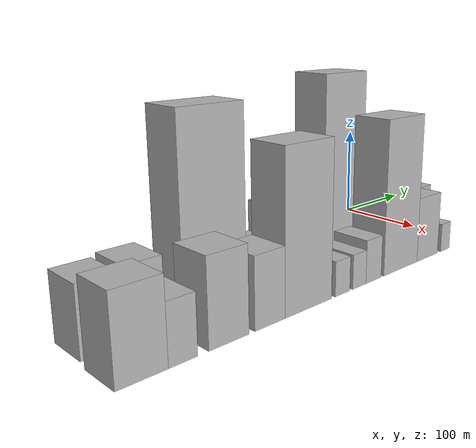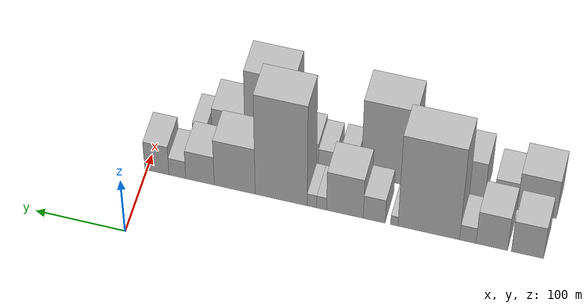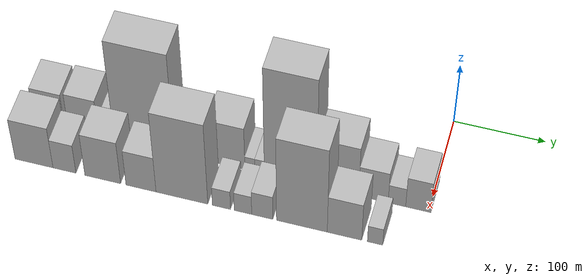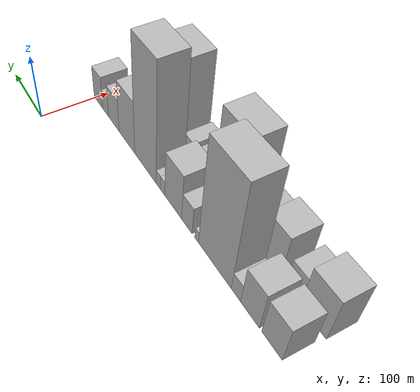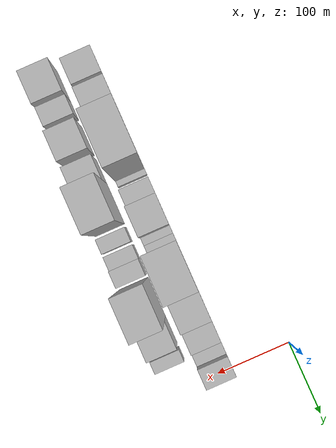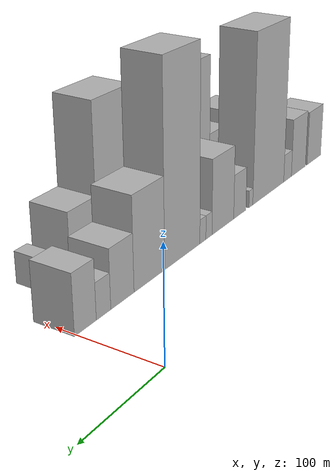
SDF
<sdf version="1.6">
 <world name="default">
  <model name="building_1">
   <static>1</static>
   <pose>100.0000 -418.6548 0 0.000000 0.000000 0.000000</pose>
   <link name="link">
    <pose>0 0 30.00 0 0 0</pose>
    <collision name="collision"><geometry><box><size>40.0000 34.6905 60.0000</size></box></geometry></collision>
    <visual name="visual">
     <cast_shadows>0</cast_shadows>
     <geometry><box><size>40.0000 34.6905 60.0000</size></box></geometry>
     <material>
      <script>
       <uri>model://HANNAS_wall/materials/scripts</uri>
       <uri>model://HANNAS_wall/materials/textures</uri>
       <name>vrc/HANNAS_wall</name>
      </script>
     </material>
    </visual>
   </link>
  </model>
  <model name="building_2">
   <static>1</static>
   <pose>100.0000 -380.2245 0 0.000000 0.000000 0.000000</pose>
   <link name="link">
    <pose>0 0 31.50 0 0 0</pose>
    <collision name="collision"><geometry><box><size>40.0000 34.1700 63.0000</size></box></geometry></collision>
    <visual name="visual">
     <cast_shadows>0</cast_shadows>
     <geometry><box><size>40.0000 34.1700 63.0000</size></box></geometry>
     <material>
      <script>
       <uri>model://HANNAS_wall/materials/scripts</uri>
       <uri>model://HANNAS_wall/materials/textures</uri>
       <name>vrc/HANNAS_wall</name>
      </script>
     </material>
    </visual>
   </link>
  </model>
  <model name="building_3">
   <static>1</static>
   <pose>100.0000 -354.2400 0 0.000000 0.000000 0.000000</pose>
   <link name="link">
    <pose>0 0 15.00 0 0 0</pose>
    <collision name="collision"><geometry><box><size>40.0000 17.7990 30.0000</size></box></geometry></collision>
    <visual name="visual">
     <cast_shadows>0</cast_shadows>
     <geometry><box><size>40.0000 17.7990 30.0000</size></box></geometry>
     <material>
      <script>
       <uri>model://HANNAS_wall/materials/scripts</uri>
       <uri>model://HANNAS_wall/materials/textures</uri>
       <name>vrc/HANNAS_wall</name>
      </script>
     </material>
    </visual>
   </link>
  </model>
  <model name="building_4">
   <static>1</static>
   <pose>100.0000 -311.7143 0 0.000000 0.000000 0.000000</pose>
   <link name="link">
    <pose>0 0 87.00 0 0 0</pose>
    <collision name="collision"><geometry><box><size>40.0000 67.2525 174.0000</size></box></geometry></collision>
    <visual name="visual">
     <cast_shadows>0</cast_shadows>
     <geometry><box><size>40.0000 67.2525 174.0000</size></box></geometry>
     <material>
      <script>
       <uri>model://HANNAS_wall/materials/scripts</uri>
       <uri>model://HANNAS_wall/materials/textures</uri>
       <name>vrc/HANNAS_wall</name>
      </script>
     </material>
    </visual>
   </link>
  </model>
  <model name="building_5">
   <static>1</static>
   <pose>100.0000 -274.0974 0 0.000000 0.000000 0.000000</pose>
   <link name="link">
    <pose>0 0 9.00 0 0 0</pose>
    <collision name="collision"><geometry><box><size>40.0000 7.9812 18.0000</size></box></geometry></collision>
    <visual name="visual">
     <cast_shadows>0</cast_shadows>
     <geometry><box><size>40.0000 7.9812 18.0000</size></box></geometry>
     <material>
      <script>
       <uri>model://HANNAS_wall/materials/scripts</uri>
       <uri>model://HANNAS_wall/materials/textures</uri>
       <name>vrc/HANNAS_wall</name>
      </script>
     </material>
    </visual>
   </link>
  </model>
  <model name="building_6">
   <static>1</static>
   <pose>100.0000 -252.1353 0 0.000000 0.000000 0.000000</pose>
   <link name="link">
    <pose>0 0 22.50 0 0 0</pose>
    <collision name="collision"><geometry><box><size>40.0000 23.9430 45.0000</size></box></geometry></collision>
    <visual name="visual">
     <cast_shadows>0</cast_shadows>
     <geometry><box><size>40.0000 23.9430 45.0000</size></box></geometry>
     <material>
      <script>
       <uri>model://HANNAS_wall/materials/scripts</uri>
       <uri>model://HANNAS_wall/materials/textures</uri>
       <name>vrc/HANNAS_wall</name>
      </script>
     </material>
    </visual>
   </link>
  </model>
  <model name="building_7">
   <static>1</static>
   <pose>100.0000 -219.9529 0 0.000000 0.000000 0.000000</pose>
   <link name="link">
    <pose>0 0 37.50 0 0 0</pose>
    <collision name="collision"><geometry><box><size>40.0000 40.4219 75.0000</size></box></geometry></collision>
    <visual name="visual">
     <cast_shadows>0</cast_shadows>
     <geometry><box><size>40.0000 40.4219 75.0000</size></box></geometry>
     <material>
      <script>
       <uri>model://HANNAS_wall/materials/scripts</uri>
       <uri>model://HANNAS_wall/materials/textures</uri>
       <name>vrc/HANNAS_wall</name>
      </script>
     </material>
    </visual>
   </link>
  </model>
  <model name="building_8">
   <static>1</static>
   <pose>100.0000 -194.3136 0 0.000000 0.000000 0.000000</pose>
   <link name="link">
    <pose>0 0 12.00 0 0 0</pose>
    <collision name="collision"><geometry><box><size>40.0000 10.8566 24.0000</size></box></geometry></collision>
    <visual name="visual">
     <cast_shadows>0</cast_shadows>
     <geometry><box><size>40.0000 10.8566 24.0000</size></box></geometry>
     <material>
      <script>
       <uri>model://HANNAS_wall/materials/scripts</uri>
       <uri>model://HANNAS_wall/materials/textures</uri>
       <name>vrc/HANNAS_wall</name>
      </script>
     </material>
    </visual>
   </link>
  </model>
  <model name="building_9">
   <static>1</static>
   <pose>100.0000 -183.6284 0 0.000000 0.000000 0.000000</pose>
   <link name="link">
    <pose>0 0 12.00 0 0 0</pose>
    <collision name="collision"><geometry><box><size>40.0000 10.5139 24.0000</size></box></geometry></collision>
    <visual name="visual">
     <cast_shadows>0</cast_shadows>
     <geometry><box><size>40.0000 10.5139 24.0000</size></box></geometry>
     <material>
      <script>
       <uri>model://HANNAS_wall/materials/scripts</uri>
       <uri>model://HANNAS_wall/materials/textures</uri>
       <name>vrc/HANNAS_wall</name>
      </script>
     </material>
    </visual>
   </link>
  </model>
  <model name="building_10">
   <static>1</static>
   <pose>100.0000 -149.5996 0 0.000000 0.000000 0.000000</pose>
   <link name="link">
    <pose>0 0 94.50 0 0 0</pose>
    <collision name="collision"><geometry><box><size>40.0000 57.5438 189.0000</size></box></geometry></collision>
    <visual name="visual">
     <cast_shadows>0</cast_shadows>
     <geometry><box><size>40.0000 57.5438 189.0000</size></box></geometry>
     <material>
      <script>
       <uri>model://HANNAS_wall/materials/scripts</uri>
       <uri>model://HANNAS_wall/materials/textures</uri>
       <name>vrc/HANNAS_wall</name>
      </script>
     </material>
    </visual>
   </link>
  </model>
  <model name="building_11">
   <static>1</static>
   <pose>100.0000 -98.1262 0 0.000000 0.000000 0.000000</pose>
   <link name="link">
    <pose>0 0 43.50 0 0 0</pose>
    <collision name="collision"><geometry><box><size>40.0000 45.4030 87.0000</size></box></geometry></collision>
    <visual name="visual">
     <cast_shadows>0</cast_shadows>
     <geometry><box><size>40.0000 45.4030 87.0000</size></box></geometry>
     <material>
      <script>
       <uri>model://HANNAS_wall/materials/scripts</uri>
       <uri>model://HANNAS_wall/materials/textures</uri>
       <name>vrc/HANNAS_wall</name>
      </script>
     </material>
    </visual>
   </link>
  </model>
  <model name="building_12">
   <static>1</static>
   <pose>100.0000 -59.4996 0 0.000000 0.000000 0.000000</pose>
   <link name="link">
    <pose>0 0 27.00 0 0 0</pose>
    <collision name="collision"><geometry><box><size>40.0000 31.8502 54.0000</size></box></geometry></collision>
    <visual name="visual">
     <cast_shadows>0</cast_shadows>
     <geometry><box><size>40.0000 31.8502 54.0000</size></box></geometry>
     <material>
      <script>
       <uri>model://HANNAS_wall/materials/scripts</uri>
       <uri>model://HANNAS_wall/materials/textures</uri>
       <name>vrc/HANNAS_wall</name>
      </script>
     </material>
    </visual>
   </link>
  </model>
  <model name="building_13">
   <static>1</static>
   <pose>100.0000 -34.1499 0 0.000000 0.000000 0.000000</pose>
   <link name="link">
    <pose>0 0 16.50 0 0 0</pose>
    <collision name="collision"><geometry><box><size>40.0000 18.8490 33.0000</size></box></geometry></collision>
    <visual name="visual">
     <cast_shadows>0</cast_shadows>
     <geometry><box><size>40.0000 18.8490 33.0000</size></box></geometry>
     <material>
      <script>
       <uri>model://HANNAS_wall/materials/scripts</uri>
       <uri>model://HANNAS_wall/materials/textures</uri>
       <name>vrc/HANNAS_wall</name>
      </script>
     </material>
    </visual>
   </link>
  </model>
  <model name="building_14">
   <static>1</static>
   <pose>100.0000 -11.1573 0 0.000000 0.000000 0.000000</pose>
   <link name="link">
    <pose>0 0 27.00 0 0 0</pose>
    <collision name="collision"><geometry><box><size>40.0000 27.1362 54.0000</size></box></geometry></collision>
    <visual name="visual">
     <cast_shadows>0</cast_shadows>
     <geometry><box><size>40.0000 27.1362 54.0000</size></box></geometry>
     <material>
      <script>
       <uri>model://HANNAS_wall/materials/scripts</uri>
       <uri>model://HANNAS_wall/materials/textures</uri>
       <name>vrc/HANNAS_wall</name>
      </script>
     </material>
    </visual>
   </link>
  </model>
  <model name="building_27">
   <static>1</static>
   <pose>152.0000 -417.7005 0 0.000000 0.000000 0.000000</pose>
   <link name="link">
    <pose>0 0 36.00 0 0 0</pose>
    <collision name="collision"><geometry><box><size>40.0000 42.5990 72.0000</size></box></geometry></collision>
    <visual name="visual">
     <cast_shadows>0</cast_shadows>
     <geometry><box><size>40.0000 42.5990 72.0000</size></box></geometry>
     <material>
      <script>
       <uri>model://HANNAS_wall/materials/scripts</uri>
       <uri>model://HANNAS_wall/materials/textures</uri>
       <name>vrc/HANNAS_wall</name>
      </script>
     </material>
    </visual>
   </link>
  </model>
  <model name="building_28">
   <static>1</static>
   <pose>152.0000 -383.5710 0 0.000000 0.000000 0.000000</pose>
   <link name="link">
    <pose>0 0 25.50 0 0 0</pose>
    <collision name="collision"><geometry><box><size>40.0000 25.6600 51.0000</size></box></geometry></collision>
    <visual name="visual">
     <cast_shadows>0</cast_shadows>
     <geometry><box><size>40.0000 25.6600 51.0000</size></box></geometry>
     <material>
      <script>
       <uri>model://HANNAS_wall/materials/scripts</uri>
       <uri>model://HANNAS_wall/materials/textures</uri>
       <name>vrc/HANNAS_wall</name>
      </script>
     </material>
    </visual>
   </link>
  </model>
  <model name="building_29">
   <static>1</static>
   <pose>152.0000 -340.9190 0 0.000000 0.000000 0.000000</pose>
   <link name="link">
    <pose>0 0 37.50 0 0 0</pose>
    <collision name="collision"><geometry><box><size>40.0000 39.6438 75.0000</size></box></geometry></collision>
    <visual name="visual">
     <cast_shadows>0</cast_shadows>
     <geometry><box><size>40.0000 39.6438 75.0000</size></box></geometry>
     <material>
      <script>
       <uri>model://HANNAS_wall/materials/scripts</uri>
       <uri>model://HANNAS_wall/materials/textures</uri>
       <name>vrc/HANNAS_wall</name>
      </script>
     </material>
    </visual>
   </link>
  </model>
  <model name="building_30">
   <static>1</static>
   <pose>152.0000 -298.5035 0 0.000000 0.000000 0.000000</pose>
   <link name="link">
    <pose>0 0 31.50 0 0 0</pose>
    <collision name="collision"><geometry><box><size>40.0000 33.1872 63.0000</size></box></geometry></collision>
    <visual name="visual">
     <cast_shadows>0</cast_shadows>
     <geometry><box><size>40.0000 33.1872 63.0000</size></box></geometry>
     <material>
      <script>
       <uri>model://HANNAS_wall/materials/scripts</uri>
       <uri>model://HANNAS_wall/materials/textures</uri>
       <name>vrc/HANNAS_wall</name>
      </script>
     </material>
    </visual>
   </link>
  </model>
  <model name="building_31">
   <static>1</static>
   <pose>152.0000 -253.5071 0 0.000000 0.000000 0.000000</pose>
   <link name="link">
    <pose>0 0 72.00 0 0 0</pose>
    <collision name="collision"><geometry><box><size>40.0000 56.8056 144.0000</size></box></geometry></collision>
    <visual name="visual">
     <cast_shadows>0</cast_shadows>
     <geometry><box><size>40.0000 56.8056 144.0000</size></box></geometry>
     <material>
      <script>
       <uri>model://HANNAS_wall/materials/scripts</uri>
       <uri>model://HANNAS_wall/materials/textures</uri>
       <name>vrc/HANNAS_wall</name>
      </script>
     </material>
    </visual>
   </link>
  </model>
  <model name="building_32">
   <static>1</static>
   <pose>152.0000 -210.2083 0 0.000000 0.000000 0.000000</pose>
   <link name="link">
    <pose>0 0 16.50 0 0 0</pose>
    <collision name="collision"><geometry><box><size>40.0000 19.7921 33.0000</size></box></geometry></collision>
    <visual name="visual">
     <cast_shadows>0</cast_shadows>
     <geometry><box><size>40.0000 19.7921 33.0000</size></box></geometry>
     <material>
      <script>
       <uri>model://HANNAS_wall/materials/scripts</uri>
       <uri>model://HANNAS_wall/materials/textures</uri>
       <name>vrc/HANNAS_wall</name>
      </script>
     </material>
    </visual>
   </link>
  </model>
  <model name="building_33">
   <static>1</static>
   <pose>152.0000 -186.8155 0 0.000000 0.000000 0.000000</pose>
   <link name="link">
    <pose>0 0 16.50 0 0 0</pose>
    <collision name="collision"><geometry><box><size>40.0000 18.9934 33.0000</size></box></geometry></collision>
    <visual name="visual">
     <cast_shadows>0</cast_shadows>
     <geometry><box><size>40.0000 18.9934 33.0000</size></box></geometry>
     <material>
      <script>
       <uri>model://HANNAS_wall/materials/scripts</uri>
       <uri>model://HANNAS_wall/materials/textures</uri>
       <name>vrc/HANNAS_wall</name>
      </script>
     </material>
    </visual>
   </link>
  </model>
  <model name="building_34">
   <static>1</static>
   <pose>152.0000 -165.8773 0 0.000000 0.000000 0.000000</pose>
   <link name="link">
    <pose>0 0 21.00 0 0 0</pose>
    <collision name="collision"><geometry><box><size>40.0000 22.8831 42.0000</size></box></geometry></collision>
    <visual name="visual">
     <cast_shadows>0</cast_shadows>
     <geometry><box><size>40.0000 22.8831 42.0000</size></box></geometry>
     <material>
      <script>
       <uri>model://HANNAS_wall/materials/scripts</uri>
       <uri>model://HANNAS_wall/materials/textures</uri>
       <name>vrc/HANNAS_wall</name>
      </script>
     </material>
    </visual>
   </link>
  </model>
  <model name="building_35">
   <static>1</static>
   <pose>152.0000 -123.1055 0 0.000000 0.000000 0.000000</pose>
   <link name="link">
    <pose>0 0 75.00 0 0 0</pose>
    <collision name="collision"><geometry><box><size>40.0000 54.6605 150.0000</size></box></geometry></collision>
    <visual name="visual">
     <cast_shadows>0</cast_shadows>
     <geometry><box><size>40.0000 54.6605 150.0000</size></box></geometry>
     <material>
      <script>
       <uri>model://HANNAS_wall/materials/scripts</uri>
       <uri>model://HANNAS_wall/materials/textures</uri>
       <name>vrc/HANNAS_wall</name>
      </script>
     </material>
    </visual>
   </link>
  </model>
  <model name="building_36">
   <static>1</static>
   <pose>152.0000 -77.3040 0 0.000000 0.000000 0.000000</pose>
   <link name="link">
    <pose>0 0 33.00 0 0 0</pose>
    <collision name="collision"><geometry><box><size>40.0000 36.9426 66.0000</size></box></geometry></collision>
    <visual name="visual">
     <cast_shadows>0</cast_shadows>
     <geometry><box><size>40.0000 36.9426 66.0000</size></box></geometry>
     <material>
      <script>
       <uri>model://HANNAS_wall/materials/scripts</uri>
       <uri>model://HANNAS_wall/materials/textures</uri>
       <name>vrc/HANNAS_wall</name>
      </script>
     </material>
    </visual>
   </link>
  </model>
  <model name="building_37">
   <static>1</static>
   <pose>152.0000 -44.6524 0 0.000000 0.000000 0.000000</pose>
   <link name="link">
    <pose>0 0 15.00 0 0 0</pose>
    <collision name="collision"><geometry><box><size>40.0000 16.3605 30.0000</size></box></geometry></collision>
    <visual name="visual">
     <cast_shadows>0</cast_shadows>
     <geometry><box><size>40.0000 16.3605 30.0000</size></box></geometry>
     <material>
      <script>
       <uri>model://HANNAS_wall/materials/scripts</uri>
       <uri>model://HANNAS_wall/materials/textures</uri>
       <name>vrc/HANNAS_wall</name>
      </script>
     </material>
    </visual>
   </link>
  </model>
 </world>
</sdf>
